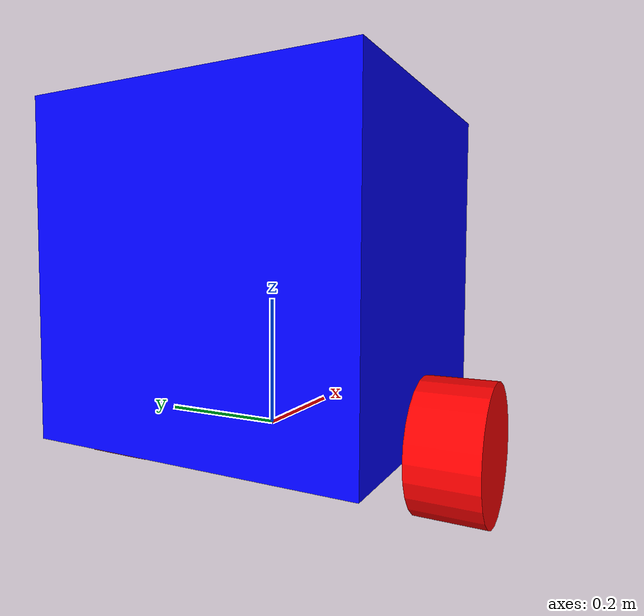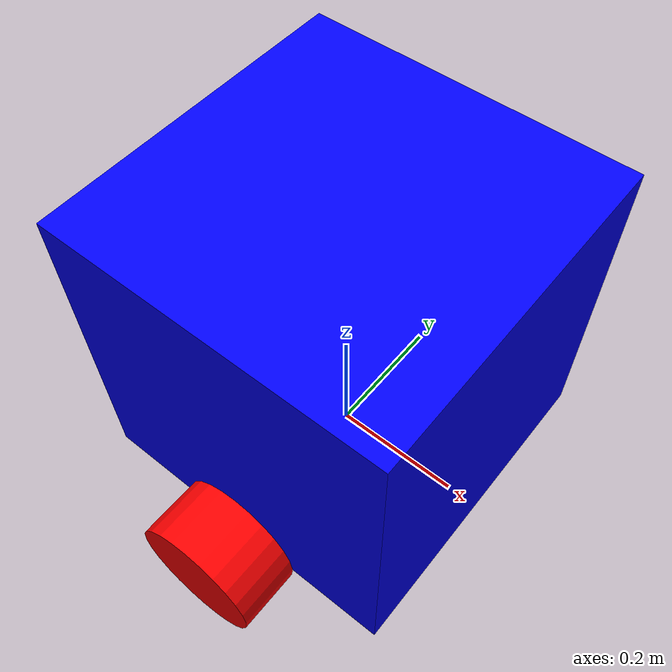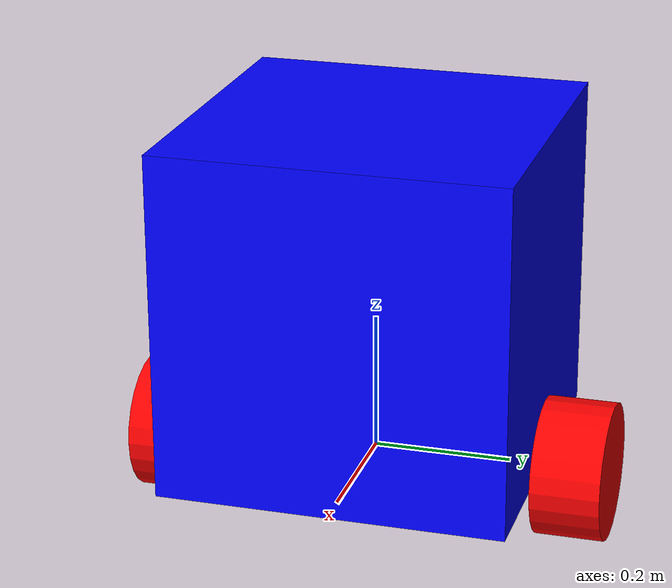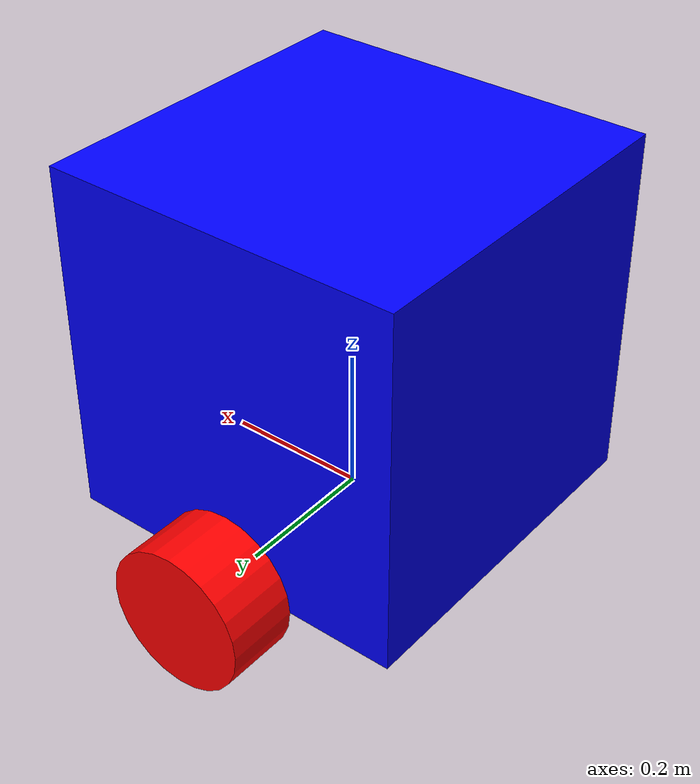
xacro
<robot name="box" xmlns:xacro="http://ros.org/wiki/xacro">
<xacro:property name="robot_base_xyz" value="0 0 0.25"/>
<xacro:property name="robot_base_rpy" value="0 0 0"/>
<xacro:property name="robot_base_size" value="0.5 0.5 0.5"/>
<xacro:property name="robot_base_rgba" value="0 0 1 1"/>
<xacro:property name="rad_xyz" value="0 0 0"/>
<xacro:property name="rad_rpy" value="0 0 0"/>
<xacro:property name="rad_size_radius" value="0.1"/>
<xacro:property name="rad_size_length" value="0.1"/>
<xacro:property name="rad_rgba" value="1 0 0 1"/>
<xacro:property name="rad_xyz_diff" value="0.3"/>
<xacro:property name="joint_rpy" value="1.57 0 0"/>
<xacro:property name="joint_axis_xyz" value="0 0 1"/>
<link name="robot_base">
<visual>
<origin xyz="${robot_base_xyz}" rpy="${robot_base_rpy}" />
<geometry>
<box size="${robot_base_size}" />
</geometry>
<material name="blau">
<color rgba="${robot_base_rgba}" />
</material>
</visual>
</link>
<xacro:macro name="rad" params="name flag">
<link name="${name}_rad">
<visual>
<origin xyz="${rad_xyz}" rpy="${rad_rpy}" />
<geometry>
<cylinder radius="${rad_size_radius}" length="${rad_size_length}"/>
</geometry>
<material name="red">
<color rgba="${rad_rgba}" />
</material>
</visual>
</link>
<joint name="base2${name}_rad" type="continuous">
<parent link="robot_base" />
<child link="${name}_rad" />
<origin xyz="0 ${flag * rad_xyz_diff} 0" rpy="${joint_rpy}"/>
<axis xyz="${joint_axis_xyz}" />
</joint>
</xacro:macro>
<xacro:rad name="link" flag="1"/>
<xacro:rad name="recht" flag="-1"/>
</robot>
